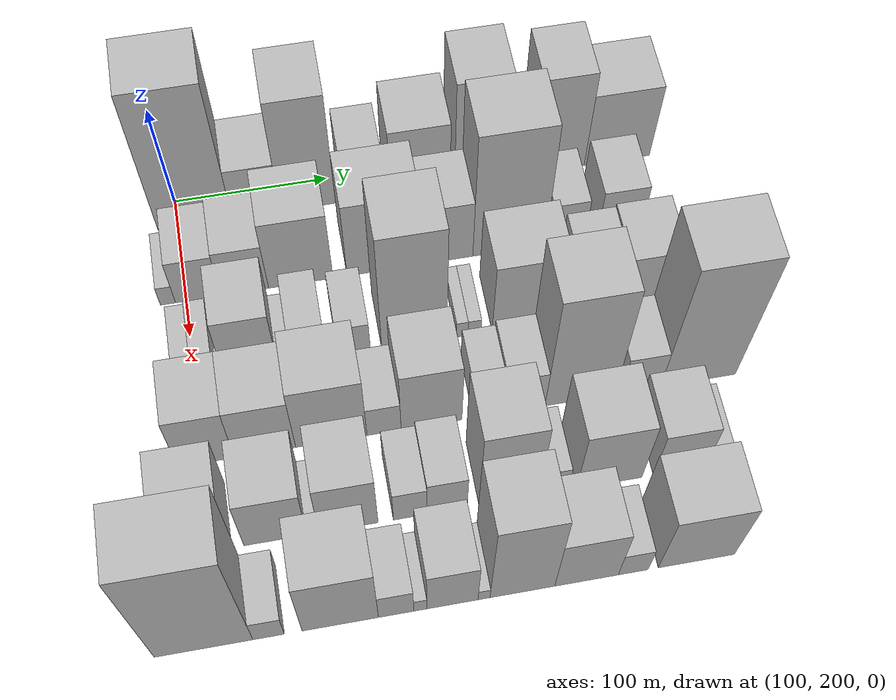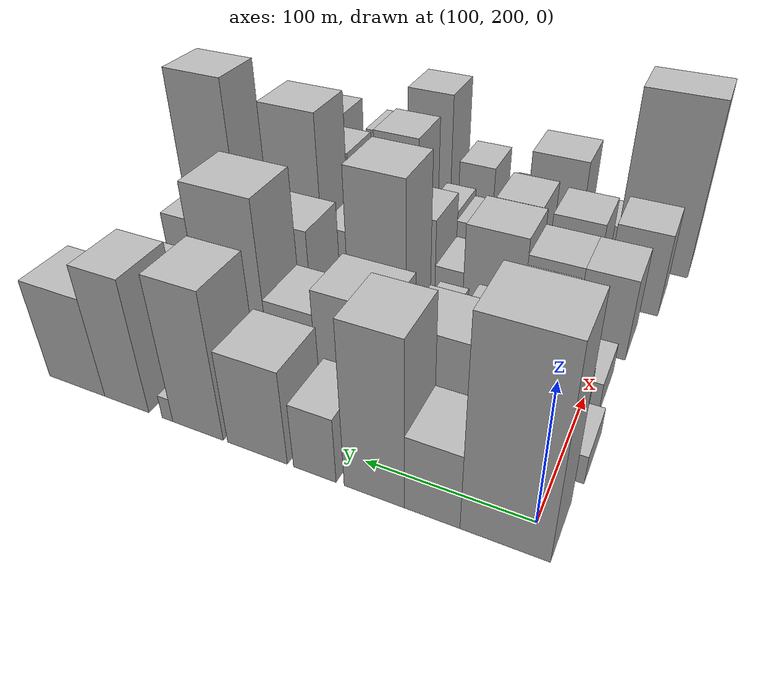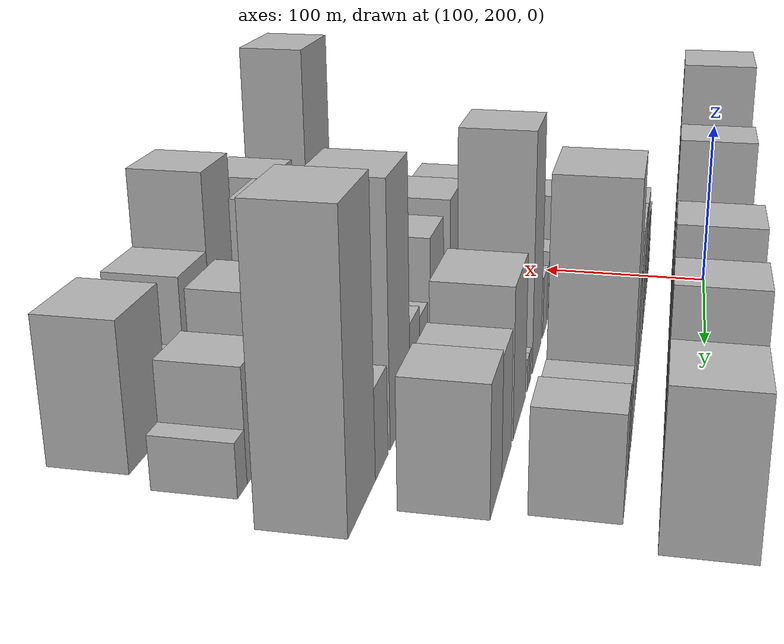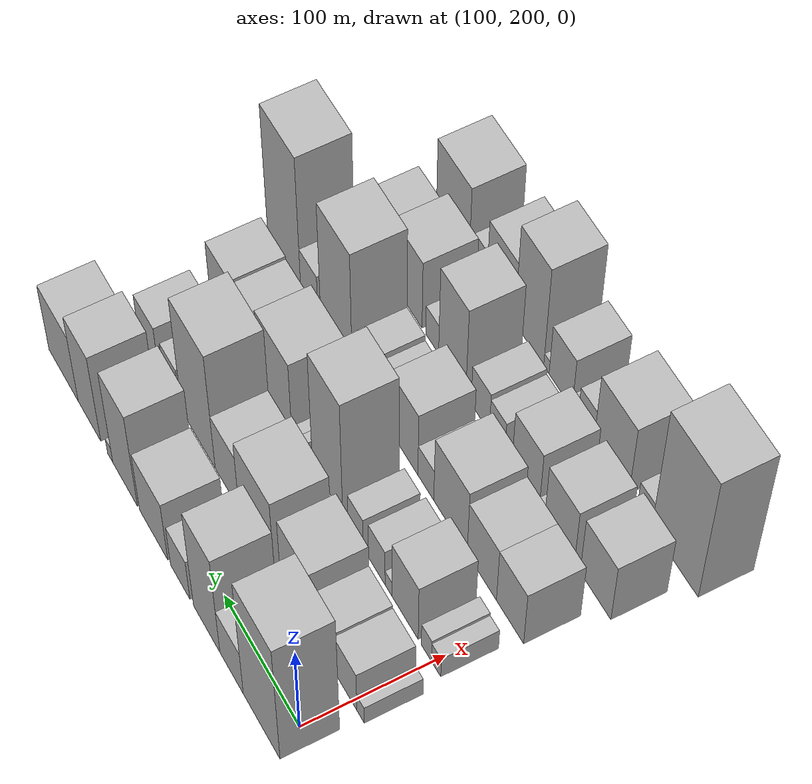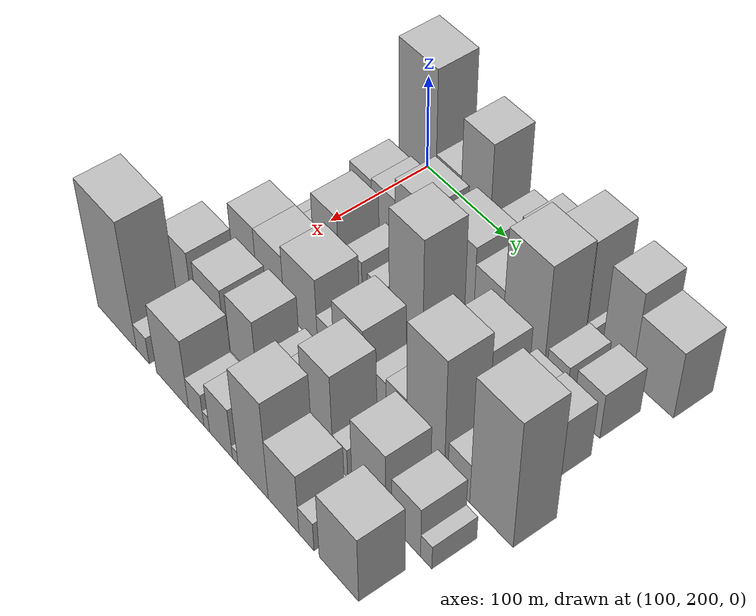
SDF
<sdf version="1.6">
 <world name="default">
  <model name="building_30">
   <static>1</static>
   <pose>100.0000 211.2149 0 0.000000 0.000000 0.000000</pose>
   <link name="link">
    <pose>0 0 72.00 0 0 0</pose>
    <collision name="collision"><geometry><box><size>40.0000 48.2366 144.0000</size></box></geometry></collision>
    <visual name="visual">
     <cast_shadows>0</cast_shadows>
     <geometry><box><size>40.0000 48.2366 144.0000</size></box></geometry>
     <material>
      <script>
       <uri>model://HANNAS_wall/materials/scripts</uri>
       <uri>model://HANNAS_wall/materials/textures</uri>
       <name>vrc/HANNAS_wall</name>
      </script>
     </material>
    </visual>
   </link>
  </model>
  <model name="building_31">
   <static>1</static>
   <pose>100.0000 251.0738 0 0.000000 0.000000 0.000000</pose>
   <link name="link">
    <pose>0 0 27.00 0 0 0</pose>
    <collision name="collision"><geometry><box><size>40.0000 31.4812 54.0000</size></box></geometry></collision>
    <visual name="visual">
     <cast_shadows>0</cast_shadows>
     <geometry><box><size>40.0000 31.4812 54.0000</size></box></geometry>
     <material>
      <script>
       <uri>model://HANNAS_wall/materials/scripts</uri>
       <uri>model://HANNAS_wall/materials/textures</uri>
       <name>vrc/HANNAS_wall</name>
      </script>
     </material>
    </visual>
   </link>
  </model>
  <model name="building_32">
   <static>1</static>
   <pose>100.0000 284.8577 0 0.000000 0.000000 0.000000</pose>
   <link name="link">
    <pose>0 0 58.50 0 0 0</pose>
    <collision name="collision"><geometry><box><size>40.0000 36.0865 117.0000</size></box></geometry></collision>
    <visual name="visual">
     <cast_shadows>0</cast_shadows>
     <geometry><box><size>40.0000 36.0865 117.0000</size></box></geometry>
     <material>
      <script>
       <uri>model://HANNAS_wall/materials/scripts</uri>
       <uri>model://HANNAS_wall/materials/textures</uri>
       <name>vrc/HANNAS_wall</name>
      </script>
     </material>
    </visual>
   </link>
  </model>
  <model name="building_33">
   <static>1</static>
   <pose>100.0000 321.3715 0 0.000000 0.000000 0.000000</pose>
   <link name="link">
    <pose>0 0 24.00 0 0 0</pose>
    <collision name="collision"><geometry><box><size>40.0000 26.9410 48.0000</size></box></geometry></collision>
    <visual name="visual">
     <cast_shadows>0</cast_shadows>
     <geometry><box><size>40.0000 26.9410 48.0000</size></box></geometry>
     <material>
      <script>
       <uri>model://HANNAS_wall/materials/scripts</uri>
       <uri>model://HANNAS_wall/materials/textures</uri>
       <name>vrc/HANNAS_wall</name>
      </script>
     </material>
    </visual>
   </link>
  </model>
  <model name="building_34">
   <static>1</static>
   <pose>100.0000 358.8824 0 0.000000 0.000000 0.000000</pose>
   <link name="link">
    <pose>0 0 34.50 0 0 0</pose>
    <collision name="collision"><geometry><box><size>40.0000 40.0808 69.0000</size></box></geometry></collision>
    <visual name="visual">
     <cast_shadows>0</cast_shadows>
     <geometry><box><size>40.0000 40.0808 69.0000</size></box></geometry>
     <material>
      <script>
       <uri>model://HANNAS_wall/materials/scripts</uri>
       <uri>model://HANNAS_wall/materials/textures</uri>
       <name>vrc/HANNAS_wall</name>
      </script>
     </material>
    </visual>
   </link>
  </model>
  <model name="building_35">
   <static>1</static>
   <pose>100.0000 399.8596 0 0.000000 0.000000 0.000000</pose>
   <link name="link">
    <pose>0 0 54.00 0 0 0</pose>
    <collision name="collision"><geometry><box><size>40.0000 35.8738 108.0000</size></box></geometry></collision>
    <visual name="visual">
     <cast_shadows>0</cast_shadows>
     <geometry><box><size>40.0000 35.8738 108.0000</size></box></geometry>
     <material>
      <script>
       <uri>model://HANNAS_wall/materials/scripts</uri>
       <uri>model://HANNAS_wall/materials/textures</uri>
       <name>vrc/HANNAS_wall</name>
      </script>
     </material>
    </visual>
   </link>
  </model>
  <model name="building_36">
   <static>1</static>
   <pose>100.0000 421.6784 0 0.000000 0.000000 0.000000</pose>
   <link name="link">
    <pose>0 0 9.00 0 0 0</pose>
    <collision name="collision"><geometry><box><size>40.0000 7.7637 18.0000</size></box></geometry></collision>
    <visual name="visual">
     <cast_shadows>0</cast_shadows>
     <geometry><box><size>40.0000 7.7637 18.0000</size></box></geometry>
     <material>
      <script>
       <uri>model://HANNAS_wall/materials/scripts</uri>
       <uri>model://HANNAS_wall/materials/textures</uri>
       <name>vrc/HANNAS_wall</name>
      </script>
     </material>
    </visual>
   </link>
  </model>
  <model name="building_37">
   <static>1</static>
   <pose>100.0000 452.3926 0 0.000000 0.000000 0.000000</pose>
   <link name="link">
    <pose>0 0 49.50 0 0 0</pose>
    <collision name="collision"><geometry><box><size>40.0000 33.6649 99.0000</size></box></geometry></collision>
    <visual name="visual">
     <cast_shadows>0</cast_shadows>
     <geometry><box><size>40.0000 33.6649 99.0000</size></box></geometry>
     <material>
      <script>
       <uri>model://HANNAS_wall/materials/scripts</uri>
       <uri>model://HANNAS_wall/materials/textures</uri>
       <name>vrc/HANNAS_wall</name>
      </script>
     </material>
    </visual>
   </link>
  </model>
  <model name="building_38">
   <static>1</static>
   <pose>100.0000 491.4287 0 0.000000 0.000000 0.000000</pose>
   <link name="link">
    <pose>0 0 37.50 0 0 0</pose>
    <collision name="collision"><geometry><box><size>40.0000 44.4073 75.0000</size></box></geometry></collision>
    <visual name="visual">
     <cast_shadows>0</cast_shadows>
     <geometry><box><size>40.0000 44.4073 75.0000</size></box></geometry>
     <material>
      <script>
       <uri>model://HANNAS_wall/materials/scripts</uri>
       <uri>model://HANNAS_wall/materials/textures</uri>
       <name>vrc/HANNAS_wall</name>
      </script>
     </material>
    </visual>
   </link>
  </model>
  <model name="building_77">
   <static>1</static>
   <pose>155.0000 188.6100 0 0.000000 0.000000 0.000000</pose>
   <link name="link">
    <pose>0 0 10.50 0 0 0</pose>
    <collision name="collision"><geometry><box><size>40.0000 9.4970 21.0000</size></box></geometry></collision>
    <visual name="visual">
     <cast_shadows>0</cast_shadows>
     <geometry><box><size>40.0000 9.4970 21.0000</size></box></geometry>
     <material>
      <script>
       <uri>model://HANNAS_wall/materials/scripts</uri>
       <uri>model://HANNAS_wall/materials/textures</uri>
       <name>vrc/HANNAS_wall</name>
      </script>
     </material>
    </visual>
   </link>
  </model>
  <model name="building_78">
   <static>1</static>
   <pose>155.0000 207.6373 0 0.000000 0.000000 0.000000</pose>
   <link name="link">
    <pose>0 0 24.00 0 0 0</pose>
    <collision name="collision"><geometry><box><size>40.0000 28.5574 48.0000</size></box></geometry></collision>
    <visual name="visual">
     <cast_shadows>0</cast_shadows>
     <geometry><box><size>40.0000 28.5574 48.0000</size></box></geometry>
     <material>
      <script>
       <uri>model://HANNAS_wall/materials/scripts</uri>
       <uri>model://HANNAS_wall/materials/textures</uri>
       <name>vrc/HANNAS_wall</name>
      </script>
     </material>
    </visual>
   </link>
  </model>
  <model name="building_79">
   <static>1</static>
   <pose>155.0000 237.0526 0 0.000000 0.000000 0.000000</pose>
   <link name="link">
    <pose>0 0 25.50 0 0 0</pose>
    <collision name="collision"><geometry><box><size>40.0000 30.2732 51.0000</size></box></geometry></collision>
    <visual name="visual">
     <cast_shadows>0</cast_shadows>
     <geometry><box><size>40.0000 30.2732 51.0000</size></box></geometry>
     <material>
      <script>
       <uri>model://HANNAS_wall/materials/scripts</uri>
       <uri>model://HANNAS_wall/materials/textures</uri>
       <name>vrc/HANNAS_wall</name>
      </script>
     </material>
    </visual>
   </link>
  </model>
  <model name="building_80">
   <static>1</static>
   <pose>155.0000 272.7343 0 0.000000 0.000000 0.000000</pose>
   <link name="link">
    <pose>0 0 37.50 0 0 0</pose>
    <collision name="collision"><geometry><box><size>40.0000 41.0902 75.0000</size></box></geometry></collision>
    <visual name="visual">
     <cast_shadows>0</cast_shadows>
     <geometry><box><size>40.0000 41.0902 75.0000</size></box></geometry>
     <material>
      <script>
       <uri>model://HANNAS_wall/materials/scripts</uri>
       <uri>model://HANNAS_wall/materials/textures</uri>
       <name>vrc/HANNAS_wall</name>
      </script>
     </material>
    </visual>
   </link>
  </model>
  <model name="building_81">
   <static>1</static>
   <pose>155.0000 326.2277 0 0.000000 0.000000 0.000000</pose>
   <link name="link">
    <pose>0 0 40.50 0 0 0</pose>
    <collision name="collision"><geometry><box><size>40.0000 47.8966 81.0000</size></box></geometry></collision>
    <visual name="visual">
     <cast_shadows>0</cast_shadows>
     <geometry><box><size>40.0000 47.8966 81.0000</size></box></geometry>
     <material>
      <script>
       <uri>model://HANNAS_wall/materials/scripts</uri>
       <uri>model://HANNAS_wall/materials/textures</uri>
       <name>vrc/HANNAS_wall</name>
      </script>
     </material>
    </visual>
   </link>
  </model>
  <model name="building_82">
   <static>1</static>
   <pose>155.0000 366.8268 0 0.000000 0.000000 0.000000</pose>
   <link name="link">
    <pose>0 0 31.50 0 0 0</pose>
    <collision name="collision"><geometry><box><size>40.0000 33.3017 63.0000</size></box></geometry></collision>
    <visual name="visual">
     <cast_shadows>0</cast_shadows>
     <geometry><box><size>40.0000 33.3017 63.0000</size></box></geometry>
     <material>
      <script>
       <uri>model://HANNAS_wall/materials/scripts</uri>
       <uri>model://HANNAS_wall/materials/textures</uri>
       <name>vrc/HANNAS_wall</name>
      </script>
     </material>
    </visual>
   </link>
  </model>
  <model name="building_83">
   <static>1</static>
   <pose>155.0000 407.1148 0 0.000000 0.000000 0.000000</pose>
   <link name="link">
    <pose>0 0 66.00 0 0 0</pose>
    <collision name="collision"><geometry><box><size>40.0000 47.2743 132.0000</size></box></geometry></collision>
    <visual name="visual">
     <cast_shadows>0</cast_shadows>
     <geometry><box><size>40.0000 47.2743 132.0000</size></box></geometry>
     <material>
      <script>
       <uri>model://HANNAS_wall/materials/scripts</uri>
       <uri>model://HANNAS_wall/materials/textures</uri>
       <name>vrc/HANNAS_wall</name>
      </script>
     </material>
    </visual>
   </link>
  </model>
  <model name="building_84">
   <static>1</static>
   <pose>155.0000 445.3146 0 0.000000 0.000000 0.000000</pose>
   <link name="link">
    <pose>0 0 22.50 0 0 0</pose>
    <collision name="collision"><geometry><box><size>40.0000 23.1253 45.0000</size></box></geometry></collision>
    <visual name="visual">
     <cast_shadows>0</cast_shadows>
     <geometry><box><size>40.0000 23.1253 45.0000</size></box></geometry>
     <material>
      <script>
       <uri>model://HANNAS_wall/materials/scripts</uri>
       <uri>model://HANNAS_wall/materials/textures</uri>
       <name>vrc/HANNAS_wall</name>
      </script>
     </material>
    </visual>
   </link>
  </model>
  <model name="building_85">
   <static>1</static>
   <pose>155.0000 479.4106 0 0.000000 0.000000 0.000000</pose>
   <link name="link">
    <pose>0 0 25.50 0 0 0</pose>
    <collision name="collision"><geometry><box><size>40.0000 29.0665 51.0000</size></box></geometry></collision>
    <visual name="visual">
     <cast_shadows>0</cast_shadows>
     <geometry><box><size>40.0000 29.0665 51.0000</size></box></geometry>
     <material>
      <script>
       <uri>model://HANNAS_wall/materials/scripts</uri>
       <uri>model://HANNAS_wall/materials/textures</uri>
       <name>vrc/HANNAS_wall</name>
      </script>
     </material>
    </visual>
   </link>
  </model>
  <model name="building_134">
   <static>1</static>
   <pose>210.0000 194.6964 0 0.000000 0.000000 0.000000</pose>
   <link name="link">
    <pose>0 0 12.00 0 0 0</pose>
    <collision name="collision"><geometry><box><size>40.0000 11.6277 24.0000</size></box></geometry></collision>
    <visual name="visual">
     <cast_shadows>0</cast_shadows>
     <geometry><box><size>40.0000 11.6277 24.0000</size></box></geometry>
     <material>
      <script>
       <uri>model://HANNAS_wall/materials/scripts</uri>
       <uri>model://HANNAS_wall/materials/textures</uri>
       <name>vrc/HANNAS_wall</name>
      </script>
     </material>
    </visual>
   </link>
  </model>
  <model name="building_135">
   <static>1</static>
   <pose>210.0000 206.9292 0 0.000000 0.000000 0.000000</pose>
   <link name="link">
    <pose>0 0 13.50 0 0 0</pose>
    <collision name="collision"><geometry><box><size>40.0000 12.8377 27.0000</size></box></geometry></collision>
    <visual name="visual">
     <cast_shadows>0</cast_shadows>
     <geometry><box><size>40.0000 12.8377 27.0000</size></box></geometry>
     <material>
      <script>
       <uri>model://HANNAS_wall/materials/scripts</uri>
       <uri>model://HANNAS_wall/materials/textures</uri>
       <name>vrc/HANNAS_wall</name>
      </script>
     </material>
    </visual>
   </link>
  </model>
  <model name="building_136">
   <static>1</static>
   <pose>210.0000 234.2161 0 0.000000 0.000000 0.000000</pose>
   <link name="link">
    <pose>0 0 33.00 0 0 0</pose>
    <collision name="collision"><geometry><box><size>40.0000 33.7362 66.0000</size></box></geometry></collision>
    <visual name="visual">
     <cast_shadows>0</cast_shadows>
     <geometry><box><size>40.0000 33.7362 66.0000</size></box></geometry>
     <material>
      <script>
       <uri>model://HANNAS_wall/materials/scripts</uri>
       <uri>model://HANNAS_wall/materials/textures</uri>
       <name>vrc/HANNAS_wall</name>
      </script>
     </material>
    </visual>
   </link>
  </model>
  <model name="building_137">
   <static>1</static>
   <pose>210.0000 255.4482 0 0.000000 0.000000 0.000000</pose>
   <link name="link">
    <pose>0 0 9.00 0 0 0</pose>
    <collision name="collision"><geometry><box><size>40.0000 8.7279 18.0000</size></box></geometry></collision>
    <visual name="visual">
     <cast_shadows>0</cast_shadows>
     <geometry><box><size>40.0000 8.7279 18.0000</size></box></geometry>
     <material>
      <script>
       <uri>model://HANNAS_wall/materials/scripts</uri>
       <uri>model://HANNAS_wall/materials/textures</uri>
       <name>vrc/HANNAS_wall</name>
      </script>
     </material>
    </visual>
   </link>
  </model>
  <model name="building_138">
   <static>1</static>
   <pose>210.0000 270.6138 0 0.000000 0.000000 0.000000</pose>
   <link name="link">
    <pose>0 0 21.00 0 0 0</pose>
    <collision name="collision"><geometry><box><size>40.0000 21.6032 42.0000</size></box></geometry></collision>
    <visual name="visual">
     <cast_shadows>0</cast_shadows>
     <geometry><box><size>40.0000 21.6032 42.0000</size></box></geometry>
     <material>
      <script>
       <uri>model://HANNAS_wall/materials/scripts</uri>
       <uri>model://HANNAS_wall/materials/textures</uri>
       <name>vrc/HANNAS_wall</name>
      </script>
     </material>
    </visual>
   </link>
  </model>
  <model name="building_139">
   <static>1</static>
   <pose>210.0000 298.5198 0 0.000000 0.000000 0.000000</pose>
   <link name="link">
    <pose>0 0 18.00 0 0 0</pose>
    <collision name="collision"><geometry><box><size>40.0000 20.2089 36.0000</size></box></geometry></collision>
    <visual name="visual">
     <cast_shadows>0</cast_shadows>
     <geometry><box><size>40.0000 20.2089 36.0000</size></box></geometry>
     <material>
      <script>
       <uri>model://HANNAS_wall/materials/scripts</uri>
       <uri>model://HANNAS_wall/materials/textures</uri>
       <name>vrc/HANNAS_wall</name>
      </script>
     </material>
    </visual>
   </link>
  </model>
  <model name="building_140">
   <static>1</static>
   <pose>210.0000 336.0394 0 0.000000 0.000000 0.000000</pose>
   <link name="link">
    <pose>0 0 66.00 0 0 0</pose>
    <collision name="collision"><geometry><box><size>40.0000 40.8303 132.0000</size></box></geometry></collision>
    <visual name="visual">
     <cast_shadows>0</cast_shadows>
     <geometry><box><size>40.0000 40.8303 132.0000</size></box></geometry>
     <material>
      <script>
       <uri>model://HANNAS_wall/materials/scripts</uri>
       <uri>model://HANNAS_wall/materials/textures</uri>
       <name>vrc/HANNAS_wall</name>
      </script>
     </material>
    </visual>
   </link>
  </model>
  <model name="building_141">
   <static>1</static>
   <pose>210.0000 366.0772 0 0.000000 0.000000 0.000000</pose>
   <link name="link">
    <pose>0 0 9.00 0 0 0</pose>
    <collision name="collision"><geometry><box><size>40.0000 7.2452 18.0000</size></box></geometry></collision>
    <visual name="visual">
     <cast_shadows>0</cast_shadows>
     <geometry><box><size>40.0000 7.2452 18.0000</size></box></geometry>
     <material>
      <script>
       <uri>model://HANNAS_wall/materials/scripts</uri>
       <uri>model://HANNAS_wall/materials/textures</uri>
       <name>vrc/HANNAS_wall</name>
      </script>
     </material>
    </visual>
   </link>
  </model>
  <model name="building_142">
   <static>1</static>
   <pose>210.0000 373.8686 0 0.000000 0.000000 0.000000</pose>
   <link name="link">
    <pose>0 0 9.00 0 0 0</pose>
    <collision name="collision"><geometry><box><size>40.0000 8.3378 18.0000</size></box></geometry></collision>
    <visual name="visual">
     <cast_shadows>0</cast_shadows>
     <geometry><box><size>40.0000 8.3378 18.0000</size></box></geometry>
     <material>
      <script>
       <uri>model://HANNAS_wall/materials/scripts</uri>
       <uri>model://HANNAS_wall/materials/textures</uri>
       <name>vrc/HANNAS_wall</name>
      </script>
     </material>
    </visual>
   </link>
  </model>
  <model name="building_143">
   <static>1</static>
   <pose>210.0000 407.8545 0 0.000000 0.000000 0.000000</pose>
   <link name="link">
    <pose>0 0 39.00 0 0 0</pose>
    <collision name="collision"><geometry><box><size>40.0000 45.6339 78.0000</size></box></geometry></collision>
    <visual name="visual">
     <cast_shadows>0</cast_shadows>
     <geometry><box><size>40.0000 45.6339 78.0000</size></box></geometry>
     <material>
      <script>
       <uri>model://HANNAS_wall/materials/scripts</uri>
       <uri>model://HANNAS_wall/materials/textures</uri>
       <name>vrc/HANNAS_wall</name>
      </script>
     </material>
    </visual>
   </link>
  </model>
  <model name="building_144">
   <static>1</static>
   <pose>210.0000 451.6942 0 0.000000 0.000000 0.000000</pose>
   <link name="link">
    <pose>0 0 30.00 0 0 0</pose>
    <collision name="collision"><geometry><box><size>40.0000 30.0455 60.0000</size></box></geometry></collision>
    <visual name="visual">
     <cast_shadows>0</cast_shadows>
     <geometry><box><size>40.0000 30.0455 60.0000</size></box></geometry>
     <material>
      <script>
       <uri>model://HANNAS_wall/materials/scripts</uri>
       <uri>model://HANNAS_wall/materials/textures</uri>
       <name>vrc/HANNAS_wall</name>
      </script>
     </material>
    </visual>
   </link>
  </model>
  <model name="building_145">
   <static>1</static>
   <pose>210.0000 483.8233 0 0.000000 0.000000 0.000000</pose>
   <link name="link">
    <pose>0 0 31.50 0 0 0</pose>
    <collision name="collision"><geometry><box><size>40.0000 34.2127 63.0000</size></box></geometry></collision>
    <visual name="visual">
     <cast_shadows>0</cast_shadows>
     <geometry><box><size>40.0000 34.2127 63.0000</size></box></geometry>
     <material>
      <script>
       <uri>model://HANNAS_wall/materials/scripts</uri>
       <uri>model://HANNAS_wall/materials/textures</uri>
       <name>vrc/HANNAS_wall</name>
      </script>
     </material>
    </visual>
   </link>
  </model>
  <model name="building_187">
   <static>1</static>
   <pose>265.0000 201.1414 0 0.000000 0.000000 0.000000</pose>
   <link name="link">
    <pose>0 0 31.50 0 0 0</pose>
    <collision name="collision"><geometry><box><size>40.0000 33.6316 63.0000</size></box></geometry></collision>
    <visual name="visual">
     <cast_shadows>0</cast_shadows>
     <geometry><box><size>40.0000 33.6316 63.0000</size></box></geometry>
     <material>
      <script>
       <uri>model://HANNAS_wall/materials/scripts</uri>
       <uri>model://HANNAS_wall/materials/textures</uri>
       <name>vrc/HANNAS_wall</name>
      </script>
     </material>
    </visual>
   </link>
  </model>
  <model name="building_188">
   <static>1</static>
   <pose>265.0000 236.3553 0 0.000000 0.000000 0.000000</pose>
   <link name="link">
    <pose>0 0 31.50 0 0 0</pose>
    <collision name="collision"><geometry><box><size>40.0000 36.7962 63.0000</size></box></geometry></collision>
    <visual name="visual">
     <cast_shadows>0</cast_shadows>
     <geometry><box><size>40.0000 36.7962 63.0000</size></box></geometry>
     <material>
      <script>
       <uri>model://HANNAS_wall/materials/scripts</uri>
       <uri>model://HANNAS_wall/materials/textures</uri>
       <name>vrc/HANNAS_wall</name>
      </script>
     </material>
    </visual>
   </link>
  </model>
  <model name="building_189">
   <static>1</static>
   <pose>265.0000 276.2235 0 0.000000 0.000000 0.000000</pose>
   <link name="link">
    <pose>0 0 37.50 0 0 0</pose>
    <collision name="collision"><geometry><box><size>40.0000 42.9402 75.0000</size></box></geometry></collision>
    <visual name="visual">
     <cast_shadows>0</cast_shadows>
     <geometry><box><size>40.0000 42.9402 75.0000</size></box></geometry>
     <material>
      <script>
       <uri>model://HANNAS_wall/materials/scripts</uri>
       <uri>model://HANNAS_wall/materials/textures</uri>
       <name>vrc/HANNAS_wall</name>
      </script>
     </material>
    </visual>
   </link>
  </model>
  <model name="building_190">
   <static>1</static>
   <pose>265.0000 308.0554 0 0.000000 0.000000 0.000000</pose>
   <link name="link">
    <pose>0 0 18.00 0 0 0</pose>
    <collision name="collision"><geometry><box><size>40.0000 20.7236 36.0000</size></box></geometry></collision>
    <visual name="visual">
     <cast_shadows>0</cast_shadows>
     <geometry><box><size>40.0000 20.7236 36.0000</size></box></geometry>
     <material>
      <script>
       <uri>model://HANNAS_wall/materials/scripts</uri>
       <uri>model://HANNAS_wall/materials/textures</uri>
       <name>vrc/HANNAS_wall</name>
      </script>
     </material>
    </visual>
   </link>
  </model>
  <model name="building_191">
   <static>1</static>
   <pose>265.0000 336.9634 0 0.000000 0.000000 0.000000</pose>
   <link name="link">
    <pose>0 0 36.00 0 0 0</pose>
    <collision name="collision"><geometry><box><size>40.0000 37.0924 72.0000</size></box></geometry></collision>
    <visual name="visual">
     <cast_shadows>0</cast_shadows>
     <geometry><box><size>40.0000 37.0924 72.0000</size></box></geometry>
     <material>
      <script>
       <uri>model://HANNAS_wall/materials/scripts</uri>
       <uri>model://HANNAS_wall/materials/textures</uri>
       <name>vrc/HANNAS_wall</name>
      </script>
     </material>
    </visual>
   </link>
  </model>
  <model name="building_192">
   <static>1</static>
   <pose>265.0000 372.5394 0 0.000000 0.000000 0.000000</pose>
   <link name="link">
    <pose>0 0 19.50 0 0 0</pose>
    <collision name="collision"><geometry><box><size>40.0000 20.0595 39.0000</size></box></geometry></collision>
    <visual name="visual">
     <cast_shadows>0</cast_shadows>
     <geometry><box><size>40.0000 20.0595 39.0000</size></box></geometry>
     <material>
      <script>
       <uri>model://HANNAS_wall/materials/scripts</uri>
       <uri>model://HANNAS_wall/materials/textures</uri>
       <name>vrc/HANNAS_wall</name>
      </script>
     </material>
    </visual>
   </link>
  </model>
  <model name="building_193">
   <static>1</static>
   <pose>265.0000 394.5999 0 0.000000 0.000000 0.000000</pose>
   <link name="link">
    <pose>0 0 22.50 0 0 0</pose>
    <collision name="collision"><geometry><box><size>40.0000 24.0615 45.0000</size></box></geometry></collision>
    <visual name="visual">
     <cast_shadows>0</cast_shadows>
     <geometry><box><size>40.0000 24.0615 45.0000</size></box></geometry>
     <material>
      <script>
       <uri>model://HANNAS_wall/materials/scripts</uri>
       <uri>model://HANNAS_wall/materials/textures</uri>
       <name>vrc/HANNAS_wall</name>
      </script>
     </material>
    </visual>
   </link>
  </model>
  <model name="building_194">
   <static>1</static>
   <pose>265.0000 428.3826 0 0.000000 0.000000 0.000000</pose>
   <link name="link">
    <pose>0 0 66.00 0 0 0</pose>
    <collision name="collision"><geometry><box><size>40.0000 43.5039 132.0000</size></box></geometry></collision>
    <visual name="visual">
     <cast_shadows>0</cast_shadows>
     <geometry><box><size>40.0000 43.5039 132.0000</size></box></geometry>
     <material>
      <script>
       <uri>model://HANNAS_wall/materials/scripts</uri>
       <uri>model://HANNAS_wall/materials/textures</uri>
       <name>vrc/HANNAS_wall</name>
      </script>
     </material>
    </visual>
   </link>
  </model>
  <model name="building_195">
   <static>1</static>
   <pose>265.0000 466.3550 0 0.000000 0.000000 0.000000</pose>
   <link name="link">
    <pose>0 0 22.50 0 0 0</pose>
    <collision name="collision"><geometry><box><size>40.0000 24.4410 45.0000</size></box></geometry></collision>
    <visual name="visual">
     <cast_shadows>0</cast_shadows>
     <geometry><box><size>40.0000 24.4410 45.0000</size></box></geometry>
     <material>
      <script>
       <uri>model://HANNAS_wall/materials/scripts</uri>
       <uri>model://HANNAS_wall/materials/textures</uri>
       <name>vrc/HANNAS_wall</name>
      </script>
     </material>
    </visual>
   </link>
  </model>
  <model name="building_196">
   <static>1</static>
   <pose>265.0000 502.1571 0 0.000000 0.000000 0.000000</pose>
   <link name="link">
    <pose>0 0 72.00 0 0 0</pose>
    <collision name="collision"><geometry><box><size>40.0000 47.1632 144.0000</size></box></geometry></collision>
    <visual name="visual">
     <cast_shadows>0</cast_shadows>
     <geometry><box><size>40.0000 47.1632 144.0000</size></box></geometry>
     <material>
      <script>
       <uri>model://HANNAS_wall/materials/scripts</uri>
       <uri>model://HANNAS_wall/materials/textures</uri>
       <name>vrc/HANNAS_wall</name>
      </script>
     </material>
    </visual>
   </link>
  </model>
  <model name="building_238">
   <static>1</static>
   <pose>320.0000 191.7736 0 0.000000 0.000000 0.000000</pose>
   <link name="link">
    <pose>0 0 33.00 0 0 0</pose>
    <collision name="collision"><geometry><box><size>40.0000 37.1687 66.0000</size></box></geometry></collision>
    <visual name="visual">
     <cast_shadows>0</cast_shadows>
     <geometry><box><size>40.0000 37.1687 66.0000</size></box></geometry>
     <material>
      <script>
       <uri>model://HANNAS_wall/materials/scripts</uri>
       <uri>model://HANNAS_wall/materials/textures</uri>
       <name>vrc/HANNAS_wall</name>
      </script>
     </material>
    </visual>
   </link>
  </model>
  <model name="building_239">
   <static>1</static>
   <pose>320.0000 235.6883 0 0.000000 0.000000 0.000000</pose>
   <link name="link">
    <pose>0 0 31.50 0 0 0</pose>
    <collision name="collision"><geometry><box><size>40.0000 36.6606 63.0000</size></box></geometry></collision>
    <visual name="visual">
     <cast_shadows>0</cast_shadows>
     <geometry><box><size>40.0000 36.6606 63.0000</size></box></geometry>
     <material>
      <script>
       <uri>model://HANNAS_wall/materials/scripts</uri>
       <uri>model://HANNAS_wall/materials/textures</uri>
       <name>vrc/HANNAS_wall</name>
      </script>
     </material>
    </visual>
   </link>
  </model>
  <model name="building_240">
   <static>1</static>
   <pose>320.0000 257.4915 0 0.000000 0.000000 0.000000</pose>
   <link name="link">
    <pose>0 0 7.50 0 0 0</pose>
    <collision name="collision"><geometry><box><size>40.0000 6.9457 15.0000</size></box></geometry></collision>
    <visual name="visual">
     <cast_shadows>0</cast_shadows>
     <geometry><box><size>40.0000 6.9457 15.0000</size></box></geometry>
     <material>
      <script>
       <uri>model://HANNAS_wall/materials/scripts</uri>
       <uri>model://HANNAS_wall/materials/textures</uri>
       <name>vrc/HANNAS_wall</name>
      </script>
     </material>
    </visual>
   </link>
  </model>
  <model name="building_241">
   <static>1</static>
   <pose>320.0000 278.2731 0 0.000000 0.000000 0.000000</pose>
   <link name="link">
    <pose>0 0 33.00 0 0 0</pose>
    <collision name="collision"><geometry><box><size>40.0000 34.6176 66.0000</size></box></geometry></collision>
    <visual name="visual">
     <cast_shadows>0</cast_shadows>
     <geometry><box><size>40.0000 34.6176 66.0000</size></box></geometry>
     <material>
      <script>
       <uri>model://HANNAS_wall/materials/scripts</uri>
       <uri>model://HANNAS_wall/materials/textures</uri>
       <name>vrc/HANNAS_wall</name>
      </script>
     </material>
    </visual>
   </link>
  </model>
  <model name="building_242">
   <static>1</static>
   <pose>320.0000 314.5492 0 0.000000 0.000000 0.000000</pose>
   <link name="link">
    <pose>0 0 19.50 0 0 0</pose>
    <collision name="collision"><geometry><box><size>40.0000 19.9345 39.0000</size></box></geometry></collision>
    <visual name="visual">
     <cast_shadows>0</cast_shadows>
     <geometry><box><size>40.0000 19.9345 39.0000</size></box></geometry>
     <material>
      <script>
       <uri>model://HANNAS_wall/materials/scripts</uri>
       <uri>model://HANNAS_wall/materials/textures</uri>
       <name>vrc/HANNAS_wall</name>
      </script>
     </material>
    </visual>
   </link>
  </model>
  <model name="building_243">
   <static>1</static>
   <pose>320.0000 336.3488 0 0.000000 0.000000 0.000000</pose>
   <link name="link">
    <pose>0 0 22.50 0 0 0</pose>
    <collision name="collision"><geometry><box><size>40.0000 23.6647 45.0000</size></box></geometry></collision>
    <visual name="visual">
     <cast_shadows>0</cast_shadows>
     <geometry><box><size>40.0000 23.6647 45.0000</size></box></geometry>
     <material>
      <script>
       <uri>model://HANNAS_wall/materials/scripts</uri>
       <uri>model://HANNAS_wall/materials/textures</uri>
       <name>vrc/HANNAS_wall</name>
      </script>
     </material>
    </visual>
   </link>
  </model>
  <model name="building_244">
   <static>1</static>
   <pose>320.0000 373.1917 0 0.000000 0.000000 0.000000</pose>
   <link name="link">
    <pose>0 0 49.50 0 0 0</pose>
    <collision name="collision"><geometry><box><size>40.0000 36.0211 99.0000</size></box></geometry></collision>
    <visual name="visual">
     <cast_shadows>0</cast_shadows>
     <geometry><box><size>40.0000 36.0211 99.0000</size></box></geometry>
     <material>
      <script>
       <uri>model://HANNAS_wall/materials/scripts</uri>
       <uri>model://HANNAS_wall/materials/textures</uri>
       <name>vrc/HANNAS_wall</name>
      </script>
     </material>
    </visual>
   </link>
  </model>
  <model name="building_245">
   <static>1</static>
   <pose>320.0000 399.8627 0 0.000000 0.000000 0.000000</pose>
   <link name="link">
    <pose>0 0 16.50 0 0 0</pose>
    <collision name="collision"><geometry><box><size>40.0000 17.3209 33.0000</size></box></geometry></collision>
    <visual name="visual">
     <cast_shadows>0</cast_shadows>
     <geometry><box><size>40.0000 17.3209 33.0000</size></box></geometry>
     <material>
      <script>
       <uri>model://HANNAS_wall/materials/scripts</uri>
       <uri>model://HANNAS_wall/materials/textures</uri>
       <name>vrc/HANNAS_wall</name>
      </script>
     </material>
    </visual>
   </link>
  </model>
  <model name="building_246">
   <static>1</static>
   <pose>320.0000 433.2815 0 0.000000 0.000000 0.000000</pose>
   <link name="link">
    <pose>0 0 37.50 0 0 0</pose>
    <collision name="collision"><geometry><box><size>40.0000 39.5167 75.0000</size></box></geometry></collision>
    <visual name="visual">
     <cast_shadows>0</cast_shadows>
     <geometry><box><size>40.0000 39.5167 75.0000</size></box></geometry>
     <material>
      <script>
       <uri>model://HANNAS_wall/materials/scripts</uri>
       <uri>model://HANNAS_wall/materials/textures</uri>
       <name>vrc/HANNAS_wall</name>
      </script>
     </material>
    </visual>
   </link>
  </model>
  <model name="building_247">
   <static>1</static>
   <pose>320.0000 476.0404 0 0.000000 0.000000 0.000000</pose>
   <link name="link">
    <pose>0 0 28.50 0 0 0</pose>
    <collision name="collision"><geometry><box><size>40.0000 32.0011 57.0000</size></box></geometry></collision>
    <visual name="visual">
     <cast_shadows>0</cast_shadows>
     <geometry><box><size>40.0000 32.0011 57.0000</size></box></geometry>
     <material>
      <script>
       <uri>model://HANNAS_wall/materials/scripts</uri>
       <uri>model://HANNAS_wall/materials/textures</uri>
       <name>vrc/HANNAS_wall</name>
      </script>
     </material>
    </visual>
   </link>
  </model>
  <model name="building_248">
   <static>1</static>
   <pose>320.0000 498.2608 0 0.000000 0.000000 0.000000</pose>
   <link name="link">
    <pose>0 0 13.50 0 0 0</pose>
    <collision name="collision"><geometry><box><size>40.0000 12.4397 27.0000</size></box></geometry></collision>
    <visual name="visual">
     <cast_shadows>0</cast_shadows>
     <geometry><box><size>40.0000 12.4397 27.0000</size></box></geometry>
     <material>
      <script>
       <uri>model://HANNAS_wall/materials/scripts</uri>
       <uri>model://HANNAS_wall/materials/textures</uri>
       <name>vrc/HANNAS_wall</name>
      </script>
     </material>
    </visual>
   </link>
  </model>
  <model name="building_288">
   <static>1</static>
   <pose>375.0000 188.4760 0 0.000000 0.000000 0.000000</pose>
   <link name="link">
    <pose>0 0 70.50 0 0 0</pose>
    <collision name="collision"><geometry><box><size>40.0000 55.0171 141.0000</size></box></geometry></collision>
    <visual name="visual">
     <cast_shadows>0</cast_shadows>
     <geometry><box><size>40.0000 55.0171 141.0000</size></box></geometry>
     <material>
      <script>
       <uri>model://HANNAS_wall/materials/scripts</uri>
       <uri>model://HANNAS_wall/materials/textures</uri>
       <name>vrc/HANNAS_wall</name>
      </script>
     </material>
    </visual>
   </link>
  </model>
  <model name="building_289">
   <static>1</static>
   <pose>375.0000 224.8212 0 0.000000 0.000000 0.000000</pose>
   <link name="link">
    <pose>0 0 15.00 0 0 0</pose>
    <collision name="collision"><geometry><box><size>40.0000 17.6734 30.0000</size></box></geometry></collision>
    <visual name="visual">
     <cast_shadows>0</cast_shadows>
     <geometry><box><size>40.0000 17.6734 30.0000</size></box></geometry>
     <material>
      <script>
       <uri>model://HANNAS_wall/materials/scripts</uri>
       <uri>model://HANNAS_wall/materials/textures</uri>
       <name>vrc/HANNAS_wall</name>
      </script>
     </material>
    </visual>
   </link>
  </model>
  <model name="building_290">
   <static>1</static>
   <pose>375.0000 265.2889 0 0.000000 0.000000 0.000000</pose>
   <link name="link">
    <pose>0 0 39.00 0 0 0</pose>
    <collision name="collision"><geometry><box><size>40.0000 43.2621 78.0000</size></box></geometry></collision>
    <visual name="visual">
     <cast_shadows>0</cast_shadows>
     <geometry><box><size>40.0000 43.2621 78.0000</size></box></geometry>
     <material>
      <script>
       <uri>model://HANNAS_wall/materials/scripts</uri>
       <uri>model://HANNAS_wall/materials/textures</uri>
       <name>vrc/HANNAS_wall</name>
      </script>
     </material>
    </visual>
   </link>
  </model>
  <model name="building_291">
   <static>1</static>
   <pose>375.0000 296.9850 0 0.000000 0.000000 0.000000</pose>
   <link name="link">
    <pose>0 0 18.00 0 0 0</pose>
    <collision name="collision"><geometry><box><size>40.0000 20.1300 36.0000</size></box></geometry></collision>
    <visual name="visual">
     <cast_shadows>0</cast_shadows>
     <geometry><box><size>40.0000 20.1300 36.0000</size></box></geometry>
     <material>
      <script>
       <uri>model://HANNAS_wall/materials/scripts</uri>
       <uri>model://HANNAS_wall/materials/textures</uri>
       <name>vrc/HANNAS_wall</name>
      </script>
     </material>
    </visual>
   </link>
  </model>
  <model name="building_292">
   <static>1</static>
   <pose>375.0000 310.7873 0 0.000000 0.000000 0.000000</pose>
   <link name="link">
    <pose>0 0 9.00 0 0 0</pose>
    <collision name="collision"><geometry><box><size>40.0000 7.4746 18.0000</size></box></geometry></collision>
    <visual name="visual">
     <cast_shadows>0</cast_shadows>
     <geometry><box><size>40.0000 7.4746 18.0000</size></box></geometry>
     <material>
      <script>
       <uri>model://HANNAS_wall/materials/scripts</uri>
       <uri>model://HANNAS_wall/materials/textures</uri>
       <name>vrc/HANNAS_wall</name>
      </script>
     </material>
    </visual>
   </link>
  </model>
  <model name="building_293">
   <static>1</static>
   <pose>375.0000 329.1938 0 0.000000 0.000000 0.000000</pose>
   <link name="link">
    <pose>0 0 28.50 0 0 0</pose>
    <collision name="collision"><geometry><box><size>40.0000 29.3384 57.0000</size></box></geometry></collision>
    <visual name="visual">
     <cast_shadows>0</cast_shadows>
     <geometry><box><size>40.0000 29.3384 57.0000</size></box></geometry>
     <material>
      <script>
       <uri>model://HANNAS_wall/materials/scripts</uri>
       <uri>model://HANNAS_wall/materials/textures</uri>
       <name>vrc/HANNAS_wall</name>
      </script>
     </material>
    </visual>
   </link>
  </model>
  <model name="building_294">
   <static>1</static>
   <pose>375.0000 347.3139 0 0.000000 0.000000 0.000000</pose>
   <link name="link">
    <pose>0 0 7.50 0 0 0</pose>
    <collision name="collision"><geometry><box><size>40.0000 6.9018 15.0000</size></box></geometry></collision>
    <visual name="visual">
     <cast_shadows>0</cast_shadows>
     <geometry><box><size>40.0000 6.9018 15.0000</size></box></geometry>
     <material>
      <script>
       <uri>model://HANNAS_wall/materials/scripts</uri>
       <uri>model://HANNAS_wall/materials/textures</uri>
       <name>vrc/HANNAS_wall</name>
      </script>
     </material>
    </visual>
   </link>
  </model>
  <model name="building_295">
   <static>1</static>
   <pose>375.0000 369.5008 0 0.000000 0.000000 0.000000</pose>
   <link name="link">
    <pose>0 0 55.50 0 0 0</pose>
    <collision name="collision"><geometry><box><size>40.0000 37.4721 111.0000</size></box></geometry></collision>
    <visual name="visual">
     <cast_shadows>0</cast_shadows>
     <geometry><box><size>40.0000 37.4721 111.0000</size></box></geometry>
     <material>
      <script>
       <uri>model://HANNAS_wall/materials/scripts</uri>
       <uri>model://HANNAS_wall/materials/textures</uri>
       <name>vrc/HANNAS_wall</name>
      </script>
     </material>
    </visual>
   </link>
  </model>
  <model name="building_296">
   <static>1</static>
   <pose>375.0000 406.7900 0 0.000000 0.000000 0.000000</pose>
   <link name="link">
    <pose>0 0 34.50 0 0 0</pose>
    <collision name="collision"><geometry><box><size>40.0000 37.1062 69.0000</size></box></geometry></collision>
    <visual name="visual">
     <cast_shadows>0</cast_shadows>
     <geometry><box><size>40.0000 37.1062 69.0000</size></box></geometry>
     <material>
      <script>
       <uri>model://HANNAS_wall/materials/scripts</uri>
       <uri>model://HANNAS_wall/materials/textures</uri>
       <name>vrc/HANNAS_wall</name>
      </script>
     </material>
    </visual>
   </link>
  </model>
  <model name="building_297">
   <static>1</static>
   <pose>375.0000 434.1174 0 0.000000 0.000000 0.000000</pose>
   <link name="link">
    <pose>0 0 16.50 0 0 0</pose>
    <collision name="collision"><geometry><box><size>40.0000 17.5487 33.0000</size></box></geometry></collision>
    <visual name="visual">
     <cast_shadows>0</cast_shadows>
     <geometry><box><size>40.0000 17.5487 33.0000</size></box></geometry>
     <material>
      <script>
       <uri>model://HANNAS_wall/materials/scripts</uri>
       <uri>model://HANNAS_wall/materials/textures</uri>
       <name>vrc/HANNAS_wall</name>
      </script>
     </material>
    </visual>
   </link>
  </model>
  <model name="building_298">
   <static>1</static>
   <pose>375.0000 471.3685 0 0.000000 0.000000 0.000000</pose>
   <link name="link">
    <pose>0 0 37.50 0 0 0</pose>
    <collision name="collision"><geometry><box><size>40.0000 44.9535 75.0000</size></box></geometry></collision>
    <visual name="visual">
     <cast_shadows>0</cast_shadows>
     <geometry><box><size>40.0000 44.9535 75.0000</size></box></geometry>
     <material>
      <script>
       <uri>model://HANNAS_wall/materials/scripts</uri>
       <uri>model://HANNAS_wall/materials/textures</uri>
       <name>vrc/HANNAS_wall</name>
      </script>
     </material>
    </visual>
   </link>
  </model>
 </world>
</sdf>
